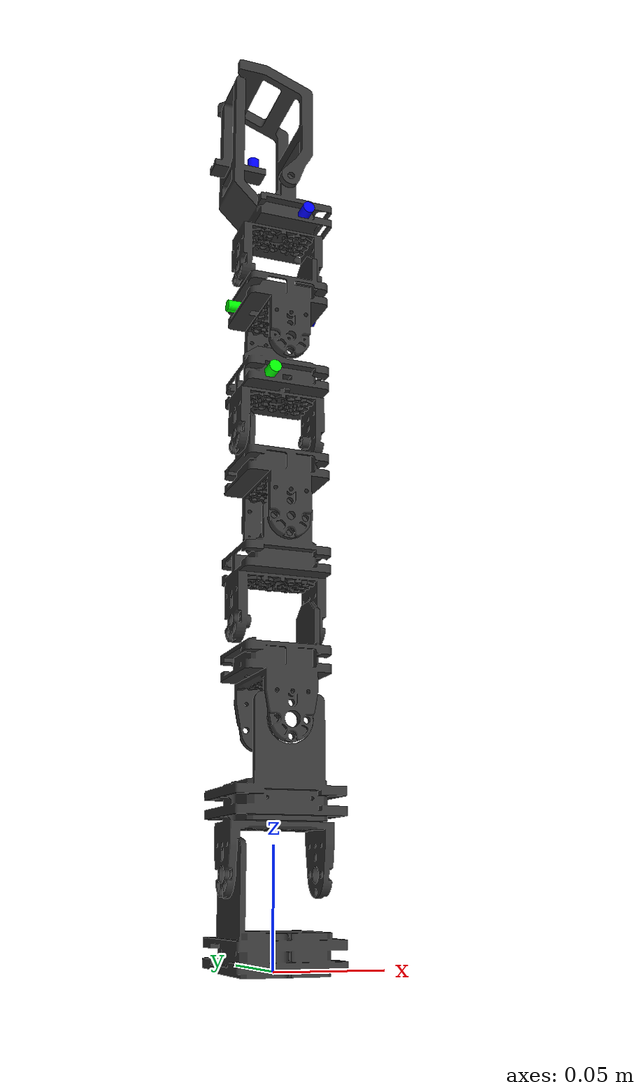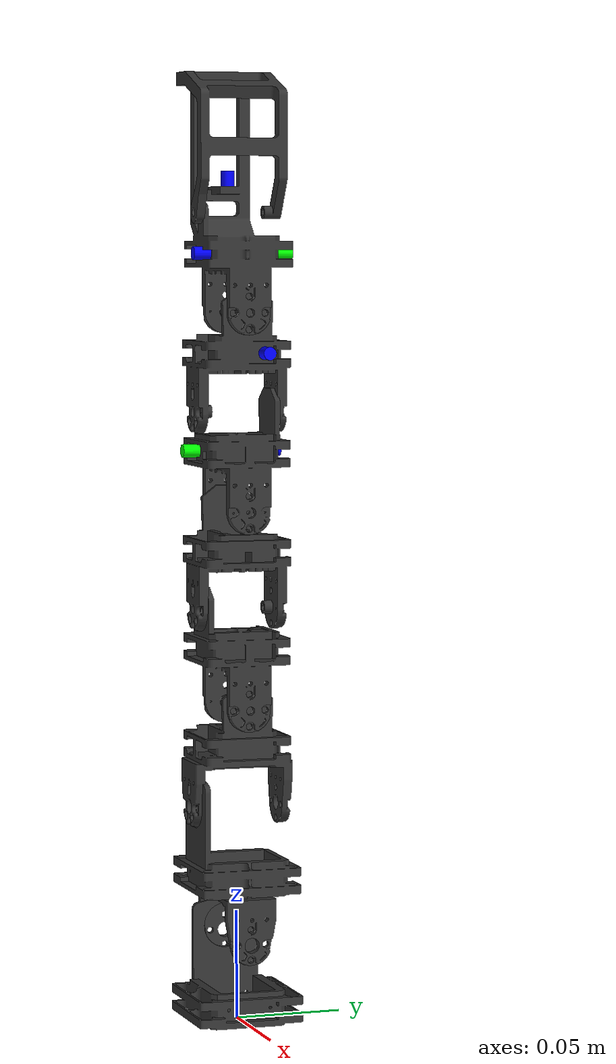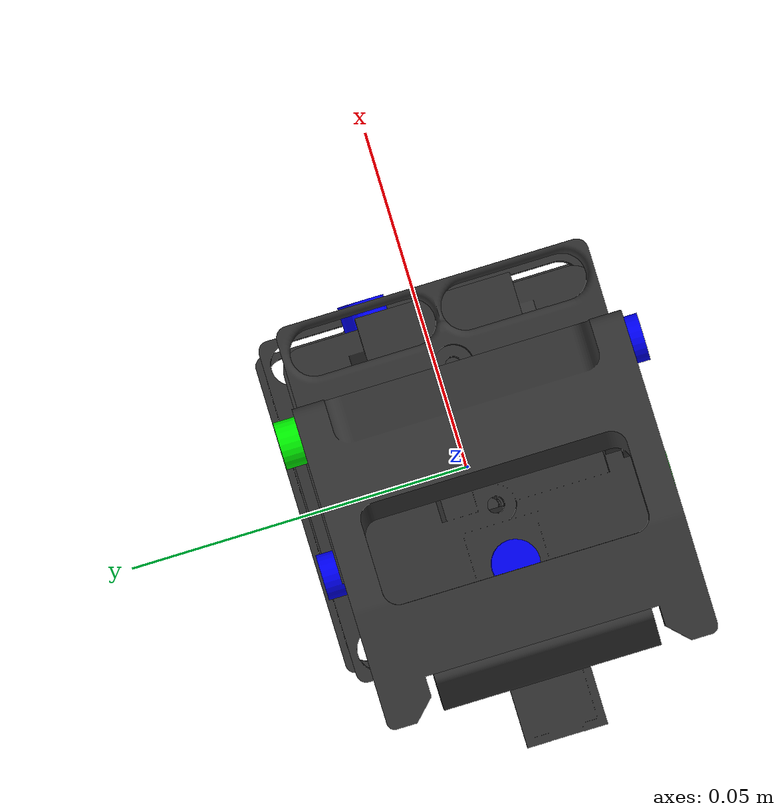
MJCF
<mujoco model="snake">
    <compiler angle="radian" meshdir="assets" autolimits="true"/>

    <asset>
      <material name="black" rgba="0.2 0.2 0.2 1"/>

      <mesh name="base" file="new_mujoco/base_module.STL"  scale="0.001 0.001 0.001"/>
      <mesh name="body_large" file="new_mujoco/body_module_large.STL"  scale="0.001 0.001 0.001"/>
      <mesh name="body_mix" file="new_mujoco/body_module_mix.STL"  scale="0.001 0.001 0.001"/>
      <mesh name="body" file="new_mujoco/body_module.STL"  scale="0.001 0.001 0.001"/>
      <mesh name="grip_head" file="new_mujoco/grip_head.STL"  scale="0.001 0.001 0.001"/>
      <mesh name="claw" file="new_mujoco/claw.STL"  scale="0.001 0.001 0.001"/>

    </asset>

    <default>
      <geom type="mesh" solref=".004 1"/>
      <joint limited="true" range="-1.570796 1.570796" damping="1.084" armature="0.0452" frictionloss="0.03"/>
      <site group="2" type="sphere"/>
      <position kp="21.1" ctrlrange="-3.141592 3.141592" forcerange="-5 5"/>
      <default class="collision">
        <geom group="3"/>
        <default class="foot">
          <geom mass="0" type="box"/>
        </default>
      </default>
      <default class="visual">
        <geom material="black" contype="0" conaffinity="0" group="2"/>
      </default>
    </default>

    <worldbody>
      <body name="base" pos="0 0 0" quat="0.7071068 0.7071068 0 0">
        <geom mesh="base" class="visual"/>
        <body name="link1" pos="0 0.06 0" quat="0.7071068 0 0.7071068 0">
          <joint name="joint0" axis="0 0 1" pos="0 -0.0195 0"/>
          <geom mesh="body_large" class="visual"/>
          <body name="link2" pos="0 0.06 0" quat="0.7071068 0 0.7071068 0">
            <joint name="joint1" axis="0 0 1" pos="0 -0.01942 0"/>
            <geom mesh="body_mix" class="visual"/>
            <body name="link3" pos="0 0.0452 0" quat="0.7071068 0 -0.7071068 0">
              <joint name="joint2" axis="0 0 1" pos="0 -0.01942 0"/>
              <geom mesh="body" class="visual"/>
              <body name="link4" pos="0 0.0452 0" quat="0.7071068 0 -0.7071068 0">
                <joint name="joint3" axis="0 0 1" pos="0 -0.01942 0"/>
                <geom mesh="body" class="visual"/>
                <body name="link5" pos="0 0.0452 0" quat="0.7071068 0 -0.7071068 0">
                  <joint name="joint4" axis="0 0 1" pos="0 -0.01942 0"/>
                  <geom mesh="body" class="visual"/>
                  <site name="link5_cam0" pos="-0.0184 0.0075 0.0086" size="0.003" rgba="0.0 0.0 1.0 1.0"
                        type="cylinder" quat="0.7071068 0 0.7071068 0"/>
                  <site name="link5_cam1" pos="0.0184 0.0075 0.0086" size="0.003" rgba="0.0 1.0 0.0 1.0"
                        type="cylinder" quat="0.7071068 0 -0.7071068 0"/>
                  <body name="link6" pos="0 0.0452 0" quat="0.7071068 0 -0.7071068 0">
                    <joint name="joint5" axis="0 0 1" pos="0 -0.01942 0"/>
                    <geom mesh="body" class="visual"/>
                    <site name="link6_cam0" pos="-0.0184 0.0075 0.0086" size="0.003" rgba="0.0 0.0 1.0 1.0"
                          type="cylinder" quat="0.7071068 0 0.7071068 0"/>
                    <site name="link6_cam1" pos="0.0184 0.0075 0.0086" size="0.003" rgba="0.0 1.0 0.0 1.0"
                          type="cylinder" quat="0.7071068 0 -0.7071068 0"/>
                    <body name="link7" pos="0 0.0452 0" quat="0.7071068 0 -0.7071068 0">
                      <joint name="joint6" axis="0 0 1" pos="0 -0.01942 0"/>
                      <geom mesh="grip_head" class="visual"/>
                      <site name="link7_cam0" pos="-0.0184 0.0075 0.0086" size="0.003" rgba="0.0 0.0 1.0 1.0"
                            type="cylinder" quat="0.7071068 0 0.7071068 0"/>
                      <site name="link7_cam1" pos="0.0184 0.0075 0.0086" size="0.003" rgba="0.0 1.0 0.0 1.0"
                            type="cylinder" quat="0.7071068 0 -0.7071068 0"/>
                        <site name="head_center" pos="0 0.04 -0.0135" size="0.003" rgba="0.0 0.0 1.0 1.0"
                              type="cylinder" quat="0.5 0.5 0.5 -0.5"/>
                        <body name="head" pos="0.033 0.021 -0.028" quat="0.7071068 0 -0.7071068 0">
                          <joint name="joint7" axis="0 0 1" pos="0.028 0.005 0.033" range="-1.570796 0"/>
                          <geom mesh="claw" class="visual"/>
                          -->
                        </body>
                      </body>
                    </body>
                  </body>
                </body>
              </body>
            </body>
          </body>

      </body>
    </worldbody>

    <actuator>
      <position name="act0" joint="joint0"/>
      <position name="act1" joint="joint1"/>
      <position name="act2" joint="joint2"/>
      <position name="act3" joint="joint3"/>
      <position name="act4" joint="joint4"/>
      <position name="act5" joint="joint5"/>
      <position name="act6" joint="joint6"/>
      <position name="act7" joint="joint7"/>
    </actuator>
  </mujoco>
